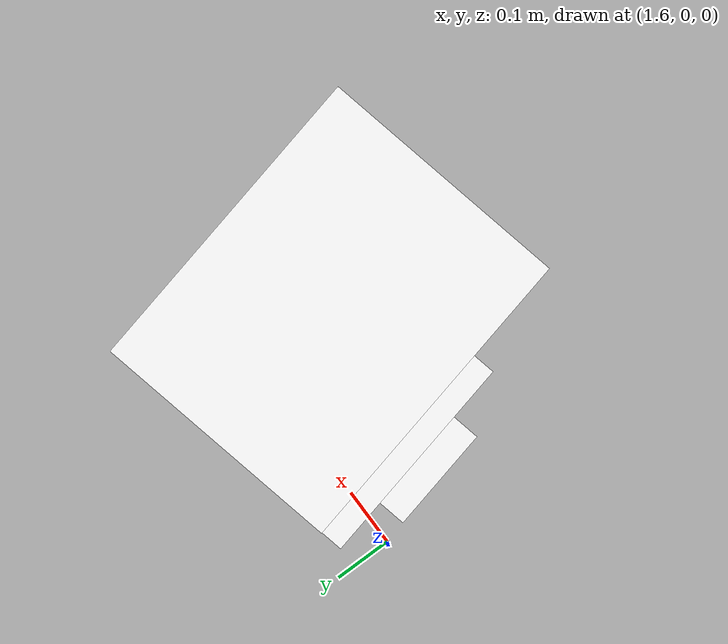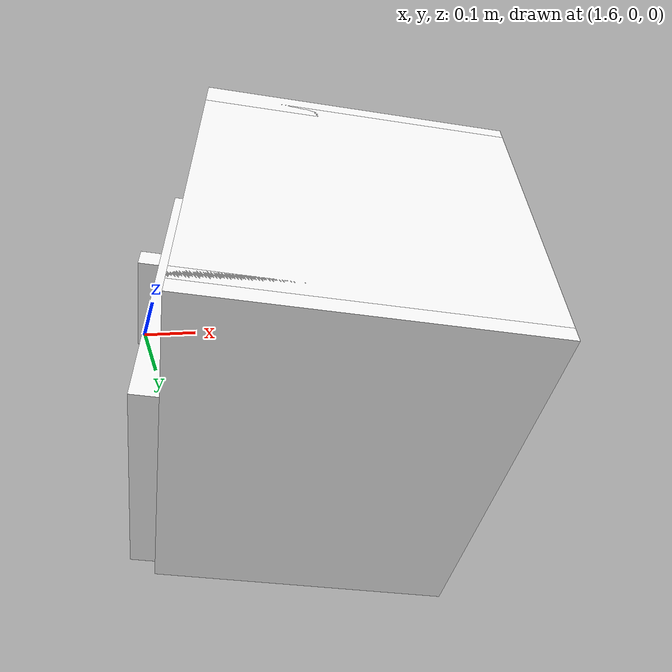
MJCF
<mujoco model="cabinet">
    <compiler angle="radian" eulerseq='zxy' />
    <option gravity = "0 0 0" />
    <option>
        <flag contact = "disable"/>
    </option>
    <statistic	extent="1.0" center="0.0 0.0 0.0"/>
    <visual>
        <map fogstart="3" fogend="5" force="0.1" znear=" 0.100000 " zfar=" 12.000000 "/>
    </visual>
    <size njmax="500" nconmax="100" />
    <actuator>
        <velocity joint="bottom_left_hinge" name="viva_revolution" kv='10'></velocity>
    </actuator>
    <asset>
        <texture builtin="flat" name="tabletex" height="32" width="32" rgb1="1 1 1" type="cube"></texture>
        <texture builtin="flat" name="objtex" height="32" width="32" rgb1="1 1 1" type="cube"></texture>
        <texture builtin="flat" name="handletex" height="32" width="32" rgb1="1 1 1" type="cube"></texture>
        <texture builtin="flat" name="wallpaper" height="32" width="32" rgb1="1 1 1" type="cube"></texture>
        <texture builtin="flat" name="kp" height="32" width="32" rgb1="1 1 1" type="cube"></texture>
        <material name="geomTable" shininess="0.03" specular="0.75" texture="tabletex"></material>
        <material name="geomObj" shininess="0.03" specular="0.75" texture="objtex"></material>
        <material name="geomHandle" shininess="0.03" specular="0.75" texture="handletex"></material>
        <material name="bg" shininess="0.03" specular="0.75" texture="wallpaper"></material>
        <material name="geomKeypad" shininess="0.03" specular="0.75" texture="kp"></material>
    </asset>
    <worldbody>
        <body name="cabinet_bottom" pos= " 1.964379 -0.152522 -0.454973 "  quat= " -0.110562 0.000000 0.000000 0.993869" >
            <inertial pos="0 0 0" mass="1" diaginertia="1 1 1" />
            <geom size= " 0.230329 0.288429 0.021690 "  type="box" material="geomObj" name="b"/>
            <body name="cabinet_left" pos= " 0.000000 -0.266739 0.223540 " >
                <inertial pos="0 0 0" mass="1" diaginertia="1 1 1" />
                <geom size= " 0.230329 0.021690 0.223540 "  type="box" material="geomObj" name="c" />
            </body>
            <body name="cabinet_right" pos= " 0.000000 0.266739 0.223540 " >
                <inertial pos="0 0 0" mass="1" diaginertia="1 1 1" />
                <geom size= " 0.230329 0.021690 0.223540 "  type="box" material="geomObj" name="d" />
            </body>
            <body name="cabinet_top" pos= " 0.000000 0.000000 0.447080 " >
                <inertial pos="0 0 0" mass="1" diaginertia="1 1 1" />
                <geom size= " 0.230329 0.288429 0.021690 "  type="box" material="geomObj" name="e"/>
            </body>
            <body name="cabinet_back" pos= " -0.208639 0.000000 0.223540 "  >
                <inertial pos="0 0 0" mass="1" diaginertia="1 1 1" />
                <geom size= " 0.021690 0.288429 0.223540 "  type="box" material="geomObj" name="f" />
            </body>
            <body name="cabinet_keypad" pos= " 0.021690 0.192751 0.223540 " >
                <inertial pos="0 0 0" mass="1" diaginertia="1 1 1" />
                <geom size= " 0.208639 0.094678 0.201850 "  type="box" material="geomKeypad" name="keypizzlemynizzle" />
            </body>
            <body name="cabinet_left_hinge" pos= " 0.230329 -0.094678 0.000000 " >
                <inertial pos= " 0.020000 0.000000 0.223540 "  mass="1" diaginertia="1 1 1" />
                <joint name="bottom_left_hinge" type="hinge" pos="0 0 0" axis="0 1 0" limited="true" range= "0 2.3"  />
                <geom size= " 0.021690 0.193751 0.223540 "  pos= " 0.020000 0.000000 0.223540 "  type="box" material="geomObj" name="g"/>
                <body name="handle_link" pos= " 0.057582 0.000000 0.403700 " >
                    <inertial pos="0 0 0" mass="1" diaginertia="1 1 1" />
                    <geom size= " 0.035983 0.094678 0.016499 "  type="box" material="geomHandle" name="h"/>
                </body>
            </body>
        </body>
        <body name="external_camera_body_0" pos="0.0 0 0.00">
            <camera euler="-1.57 1.57 0.0" fovy=" 54.280851 " name="external_camera_0" pos="0.0 0 0"></camera>
            <inertial pos= " 0.00 0.0 0.000000 " mass="1" diaginertia="1 1 1" />
            <joint name="cam_j" pos="0.0 0 0" axis = "1 0 0" type="free" />
        </body>
    </worldbody>
</mujoco>
